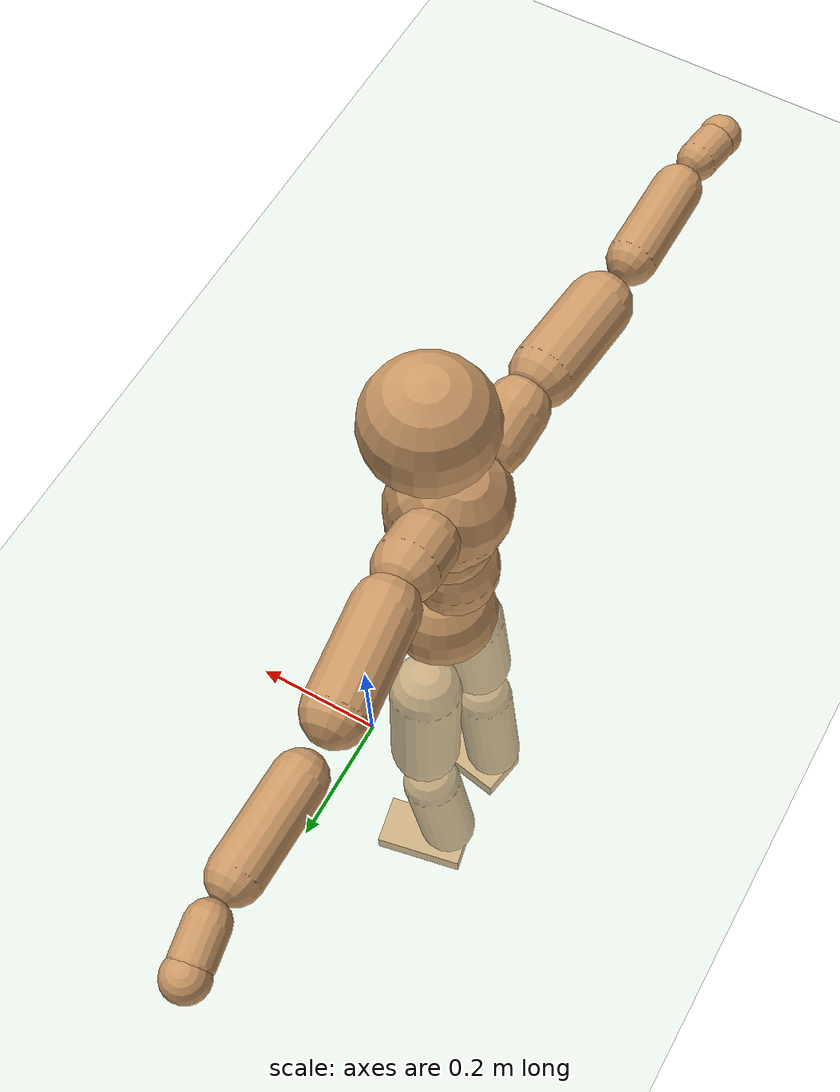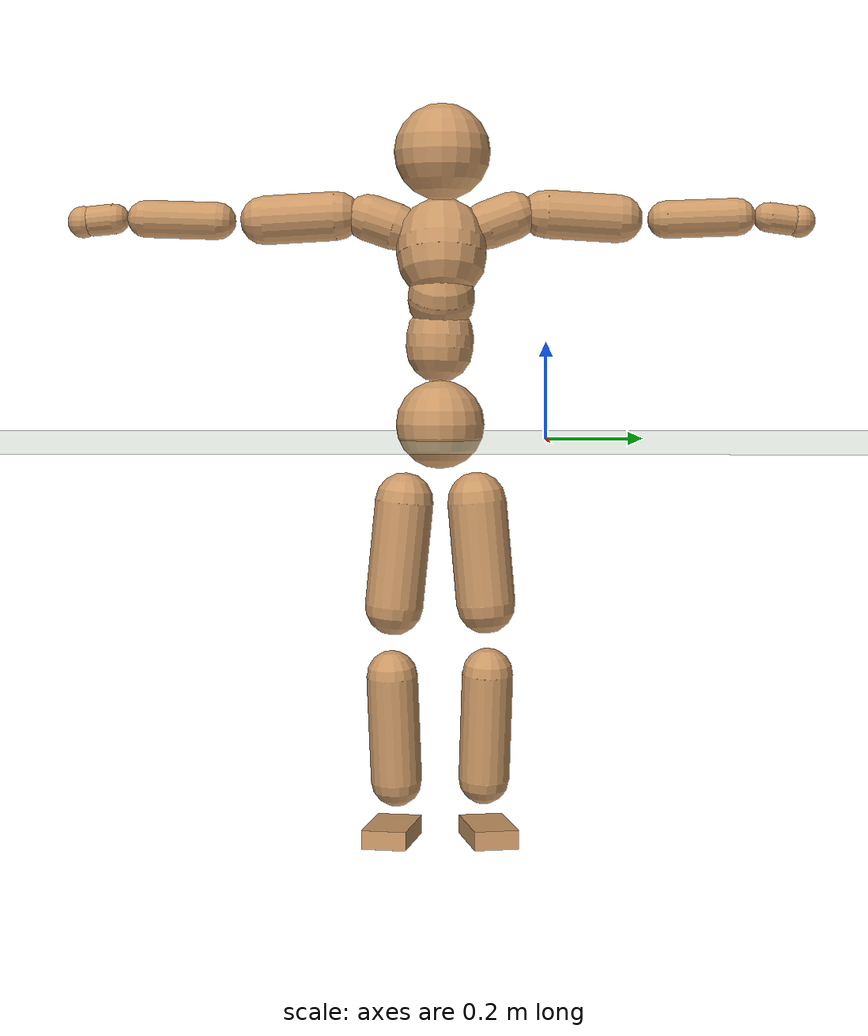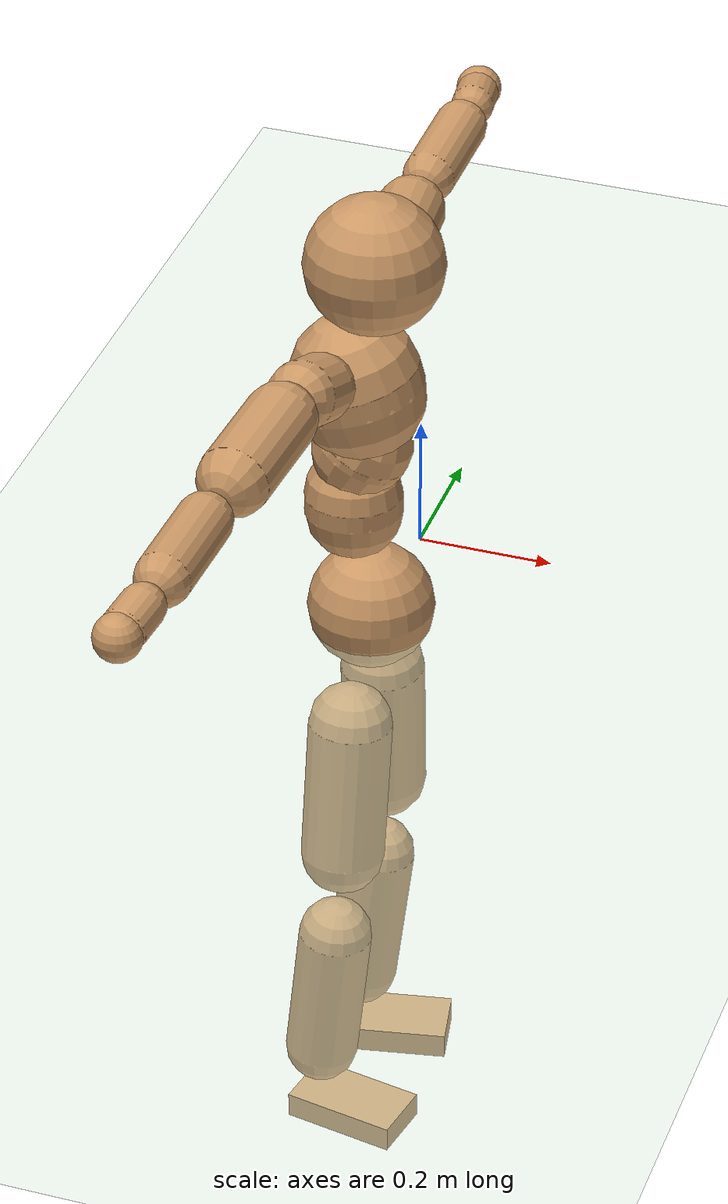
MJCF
<mujoco model="humanoid">
  <compiler coordinate="local"/>
  <default>
    <joint damping="0.0" armature="0.01" stiffness="0.0" limited="true"/>
    <geom conaffinity="1" condim="3" contype="7" margin="0.001" rgba="0.8 0.6 .4 1"/>
  </default>
  <asset>
    <texture type="skybox" builtin="gradient" rgb1=".4 .5 .6" rgb2="0 0 0" width="100" height="100"/>
    <texture builtin="flat" height="1278" mark="cross" markrgb="1 1 1" name="texgeom" random="0.01" rgb1="0.8 0.6 0.4" rgb2="0.8 0.6 0.4" type="cube" width="127"/>
    <texture builtin="checker" height="100" name="texplane" rgb1="0 0 0" rgb2="0.8 0.8 0.8" type="2d" width="100"/>
    <material name="MatPlane" reflectance="0.5" shininess="1" specular="1" texrepeat="60 60" texture="texplane"/>
    <material name="geom" texture="texgeom" texuniform="true"/>
  </asset>
  <worldbody>
    <light cutoff="100" diffuse="1 1 1" dir="-0 0 -1.3" directional="true" exponent="1" pos="0 0 1.3" specular=".1 .1 .1"/>
    <geom conaffinity="1" condim="3" name="floor" pos="0 0 0" rgba="0.8 0.9 0.8 1" size="100 100 .2" type="plane" material="MatPlane"/>
    <body name="Pelvis" pos="-0.0015 -0.2199 0.0301">
      <freejoint name="Pelvis"/>
      <geom type="sphere" contype="1" conaffinity="1" density="500" size="0.0921" pos="0.0000 0.0000 0.0000" name="Pelvis"/>
      <body name="L_Hip" pos="-0.007 0.0704 -0.089">
        <joint name="L_Hip_x" type="hinge" pos="0 0 0" axis="1 0 0" stiffness="800" damping="80" armature="0.02" range="-180.0000 180.0000"/>
        <joint name="L_Hip_y" type="hinge" pos="0 0 0" axis="0 1 0" stiffness="800" damping="80" armature="0.02" range="-180.0000 180.0000"/>
        <joint name="L_Hip_z" type="hinge" pos="0 0 0" axis="0 0 1" stiffness="800" damping="80" armature="0.02" range="-180.0000 180.0000"/>
        <geom type="capsule" contype="1" conaffinity="1" density="500" fromto="-0.0009 0.0062 -0.0718 -0.0034 0.0250 -0.2873" size="0.0616" name="L_Hip"/>
        <body name="L_Knee" pos="-0.0043 0.0312 -0.3592">
          <joint name="L_Knee_x" type="hinge" pos="0 0 0" axis="1 0 0" stiffness="800" damping="80" armature="0.02" range="-180.0000 180.0000"/>
          <joint name="L_Knee_y" type="hinge" pos="0 0 0" axis="0 1 0" stiffness="800" damping="80" armature="0.02" range="-180.0000 180.0000"/>
          <joint name="L_Knee_z" type="hinge" pos="0 0 0" axis="0 0 1" stiffness="800" damping="80" armature="0.02" range="-180.0000 180.0000"/>
          <geom type="capsule" contype="1" conaffinity="1" density="500" fromto="-0.0085 -0.0024 -0.0757 -0.0341 -0.0094 -0.3030" size="0.0536" name="L_Knee"/>
          <body name="L_Ankle" pos="-0.0426 -0.0118 -0.3787">
            <joint name="L_Ankle_x" type="hinge" pos="0 0 0" axis="1 0 0" stiffness="800" damping="80" armature="0.02" range="-180.0000 180.0000"/>
            <joint name="L_Ankle_y" type="hinge" pos="0 0 0" axis="0 1 0" stiffness="800" damping="80" armature="0.02" range="-180.0000 180.0000"/>
            <joint name="L_Ankle_z" type="hinge" pos="0 0 0" axis="0 0 1" stiffness="800" damping="80" armature="0.02" range="-180.0000 180.0000"/>
            <geom type="box" contype="1" conaffinity="1" density="500" pos="0.0583 0.0116 -0.0274" size="0.0843 0.0464 0.0197" quat="0.9952 0.0000 0.0000 0.0980" name="L_Ankle"/>
            <body name="L_Toe" pos="0.1166 0.0232 -0.0547">
              <joint name="L_Toe_x" type="hinge" pos="0 0 0" axis="1 0 0" stiffness="500" damping="50" armature="0.02" range="-180.0000 180.0000"/>
              <joint name="L_Toe_y" type="hinge" pos="0 0 0" axis="0 1 0" stiffness="500" damping="50" armature="0.02" range="-180.0000 180.0000"/>
              <joint name="L_Toe_z" type="hinge" pos="0 0 0" axis="0 0 1" stiffness="500" damping="50" armature="0.02" range="-180.0000 180.0000"/>
              <geom type="box" contype="1" conaffinity="1" density="500" pos="0.0000 0.0000 0.0272" size="0.001 0.0023 0.001" quat="0.9945 0.0000 0.0000 0.1044" name="L_Toe"/>
            </body>
          </body>
        </body>
      </body>
      <body name="R_Hip" pos="-0.0044 -0.0678 -0.088">
        <joint name="R_Hip_x" type="hinge" pos="0 0 0" axis="1 0 0" stiffness="800" damping="80" armature="0.02" range="-180.0000 180.0000"/>
        <joint name="R_Hip_y" type="hinge" pos="0 0 0" axis="0 1 0" stiffness="800" damping="80" armature="0.02" range="-180.0000 180.0000"/>
        <joint name="R_Hip_z" type="hinge" pos="0 0 0" axis="0 0 1" stiffness="800" damping="80" armature="0.02" range="-180.0000 180.0000"/>
        <geom type="capsule" contype="1" conaffinity="1" density="500" fromto="-0.0014 -0.0072 -0.0732 -0.0058 -0.0290 -0.2927" size="0.0609" name="R_Hip"/>
        <body name="R_Knee" pos="-0.0072 -0.0362 -0.3659">
          <joint name="R_Knee_x" type="hinge" pos="0 0 0" axis="1 0 0" stiffness="800" damping="80" armature="0.02" range="-180.0000 180.0000"/>
          <joint name="R_Knee_y" type="hinge" pos="0 0 0" axis="0 1 0" stiffness="800" damping="80" armature="0.02" range="-180.0000 180.0000"/>
          <joint name="R_Knee_z" type="hinge" pos="0 0 0" axis="0 0 1" stiffness="800" damping="80" armature="0.02" range="-180.0000 180.0000"/>
          <geom type="capsule" contype="1" conaffinity="1" density="500" fromto="-0.0083 0.0027 -0.0756 -0.0332 0.0109 -0.3024" size="0.0538" name="R_Knee"/>
          <body name="R_Ankle" pos="-0.0415 0.0136 -0.378">
            <joint name="R_Ankle_x" type="hinge" pos="0 0 0" axis="1 0 0" stiffness="800" damping="80" armature="0.02" range="-180.0000 180.0000"/>
            <joint name="R_Ankle_y" type="hinge" pos="0 0 0" axis="0 1 0" stiffness="800" damping="80" armature="0.02" range="-180.0000 180.0000"/>
            <joint name="R_Ankle_z" type="hinge" pos="0 0 0" axis="0 0 1" stiffness="800" damping="80" armature="0.02" range="-180.0000 180.0000"/>
            <geom type="box" contype="1" conaffinity="1" density="500" pos="0.0600 -0.0107 -0.0227" size="0.0846 0.0468 0.0195" quat="0.9961 0.0000 0.0000 -0.0883" name="R_Ankle"/>
            <body name="R_Toe" pos="0.12 -0.0215 -0.0454">
              <joint name="R_Toe_x" type="hinge" pos="0 0 0" axis="1 0 0" stiffness="500" damping="50" armature="0.02" range="-180.0000 180.0000"/>
              <joint name="R_Toe_y" type="hinge" pos="0 0 0" axis="0 1 0" stiffness="500" damping="50" armature="0.02" range="-180.0000 180.0000"/>
              <joint name="R_Toe_z" type="hinge" pos="0 0 0" axis="0 0 1" stiffness="500" damping="50" armature="0.02" range="-180.0000 180.0000"/>
              <geom type="box" contype="1" conaffinity="1" density="500" pos="0.0000 0.0000 0.0254" size="0.0009 0.0023 0.0011" quat="0.9969 0.0000 0.0000 -0.0790" name="R_Toe"/>
            </body>
          </body>
        </body>
      </body>
      <body name="Torso" pos="-0.0241 -0.0034 0.1038">
        <joint name="Torso_x" type="hinge" pos="0 0 0" axis="1 0 0" stiffness="1000" damping="100" armature="0.02" range="-180.0000 180.0000"/>
        <joint name="Torso_y" type="hinge" pos="0 0 0" axis="0 1 0" stiffness="1000" damping="100" armature="0.02" range="-180.0000 180.0000"/>
        <joint name="Torso_z" type="hinge" pos="0 0 0" axis="0 0 1" stiffness="1000" damping="100" armature="0.02" range="-180.0000 180.0000"/>
        <geom type="capsule" contype="1" conaffinity="1" density="500" fromto="-0.0024 0.0027 0.0808 -0.0016 0.0018 0.0539" size="0.0707" name="Torso"/>
        <body name="Spine" pos="-0.0041 0.0045 0.1347">
          <joint name="Spine_x" type="hinge" pos="0 0 0" axis="1 0 0" stiffness="1000" damping="100" armature="0.02" range="-180.0000 180.0000"/>
          <joint name="Spine_y" type="hinge" pos="0 0 0" axis="0 1 0" stiffness="1000" damping="100" armature="0.02" range="-180.0000 180.0000"/>
          <joint name="Spine_z" type="hinge" pos="0 0 0" axis="0 0 1" stiffness="1000" damping="100" armature="0.02" range="-180.0000 180.0000"/>
          <geom type="capsule" contype="1" conaffinity="1" density="500" fromto="0.0164 0.0013 0.0301 0.0110 0.0009 0.0201" size="0.0702" name="Spine"/>
          <body name="Chest" pos="0.0274 0.0022 0.0502">
            <joint name="Chest_x" type="hinge" pos="0 0 0" axis="1 0 0" stiffness="1000" damping="100" armature="0.02" range="-180.0000 180.0000"/>
            <joint name="Chest_y" type="hinge" pos="0 0 0" axis="0 1 0" stiffness="1000" damping="100" armature="0.02" range="-180.0000 180.0000"/>
            <joint name="Chest_z" type="hinge" pos="0 0 0" axis="0 0 1" stiffness="1000" damping="100" armature="0.02" range="-180.0000 180.0000"/>
            <geom type="capsule" contype="1" conaffinity="1" density="500" fromto="-0.0252 -0.0007 0.0892 -0.0168 -0.0004 0.0595" size="0.0939" name="Chest"/>
            <body name="Neck" pos="-0.048 -0.002 0.2107">
              <joint name="Neck_x" type="hinge" pos="0 0 0" axis="1 0 0" stiffness="500" damping="50" armature="0.02" range="-180.0000 180.0000"/>
              <joint name="Neck_y" type="hinge" pos="0 0 0" axis="0 1 0" stiffness="500" damping="50" armature="0.02" range="-180.0000 180.0000"/>
              <joint name="Neck_z" type="hinge" pos="0 0 0" axis="0 0 1" stiffness="500" damping="50" armature="0.02" range="-180.0000 180.0000"/>
              <geom type="capsule" contype="1" conaffinity="1" density="500" fromto="0.0100 0.0006 0.0126 0.0402 0.0025 0.0505" size="0.0416" name="Neck"/>
              <body name="Head" pos="0.0502 0.0031 0.0631">
                <joint name="Head_x" type="hinge" pos="0 0 0" axis="1 0 0" stiffness="500" damping="50" armature="0.02" range="-180.0000 180.0000"/>
                <joint name="Head_y" type="hinge" pos="0 0 0" axis="0 1 0" stiffness="500" damping="50" armature="0.02" range="-180.0000 180.0000"/>
                <joint name="Head_z" type="hinge" pos="0 0 0" axis="0 0 1" stiffness="500" damping="50" armature="0.02" range="-180.0000 180.0000"/>
                <geom type="sphere" contype="1" conaffinity="1" density="500" size="0.0999" pos="0.0000 0.0000 0.0000" name="Head"/>
              </body>
            </body>
            <body name="L_Thorax" pos="-0.0365 0.0761 0.119">
              <joint name="L_Thorax_x" type="hinge" pos="0 0 0" axis="1 0 0" stiffness="500" damping="50" armature="0.02" range="-180.0000 180.0000"/>
              <joint name="L_Thorax_y" type="hinge" pos="0 0 0" axis="0 1 0" stiffness="500" damping="50" armature="0.02" range="-180.0000 180.0000"/>
              <joint name="L_Thorax_z" type="hinge" pos="0 0 0" axis="0 0 1" stiffness="500" damping="50" armature="0.02" range="-180.0000 180.0000"/>
              <geom type="capsule" contype="1" conaffinity="1" density="500" fromto="-0.0013 0.0178 0.0067 -0.0053 0.0713 0.0268" size="0.0507" name="L_Thorax"/>
              <body name="L_Shoulder" pos="-0.0066 0.0891 0.0335">
                <joint name="L_Shoulder_x" type="hinge" pos="0 0 0" axis="1 0 0" stiffness="500" damping="50" armature="0.02" range="-720.0000 720.0000"/>
                <joint name="L_Shoulder_y" type="hinge" pos="0 0 0" axis="0 1 0" stiffness="500" damping="50" armature="0.02" range="-720.0000 720.0000"/>
                <joint name="L_Shoulder_z" type="hinge" pos="0 0 0" axis="0 0 1" stiffness="500" damping="50" armature="0.02" range="-720.0000 720.0000"/>
                <geom type="capsule" contype="1" conaffinity="1" density="500" fromto="-0.0059 0.0513 -0.0029 -0.0235 0.2051 -0.0117" size="0.0508" name="L_Shoulder"/>
                <body name="L_Elbow" pos="-0.0294 0.2563 -0.0146">
                  <joint name="L_Elbow_x" type="hinge" pos="0 0 0" axis="1 0 0" stiffness="500" damping="50" armature="0.02" range="-720.0000 720.0000"/>
                  <joint name="L_Elbow_y" type="hinge" pos="0 0 0" axis="0 1 0" stiffness="500" damping="50" armature="0.02" range="-720.0000 720.0000"/>
                  <joint name="L_Elbow_z" type="hinge" pos="0 0 0" axis="0 0 1" stiffness="500" damping="50" armature="0.02" range="-720.0000 720.0000"/>
                  <geom type="capsule" contype="1" conaffinity="1" density="500" fromto="0.0002 0.0494 0.0018 0.0008 0.1975 0.0071" size="0.0395" name="L_Elbow"/>
                  <body name="L_Wrist" pos="0.0011 0.2468 0.0088">
                    <joint name="L_Wrist_x" type="hinge" pos="0 0 0" axis="1 0 0" stiffness="300" damping="30" armature="0.02" range="-180.0000 180.0000"/>
                    <joint name="L_Wrist_y" type="hinge" pos="0 0 0" axis="0 1 0" stiffness="300" damping="30" armature="0.02" range="-180.0000 180.0000"/>
                    <joint name="L_Wrist_z" type="hinge" pos="0 0 0" axis="0 0 1" stiffness="300" damping="30" armature="0.02" range="-180.0000 180.0000"/>
                    <geom type="capsule" contype="1" conaffinity="1" density="500" fromto="-0.0028 0.0168 -0.0021 -0.0111 0.0671 -0.0082" size="0.0315" name="L_Wrist"/>
                    <body name="L_Hand" pos="-0.0139 0.0839 -0.0103">
                      <joint name="L_Hand_x" type="hinge" pos="0 0 0" axis="1 0 0" stiffness="300" damping="30" armature="0.02" range="-180.0000 180.0000"/>
                      <joint name="L_Hand_y" type="hinge" pos="0 0 0" axis="0 1 0" stiffness="300" damping="30" armature="0.02" range="-180.0000 180.0000"/>
                      <joint name="L_Hand_z" type="hinge" pos="0 0 0" axis="0 0 1" stiffness="300" damping="30" armature="0.02" range="-180.0000 180.0000"/>
                      <geom type="sphere" contype="1" conaffinity="1" density="500" size="0.0338" pos="0.0000 0.0000 0.0000" name="L_Hand"/>
                    </body>
                  </body>
                </body>
              </body>
            </body>
            <body name="R_Thorax" pos="-0.0417 -0.0775 0.1162">
              <joint name="R_Thorax_x" type="hinge" pos="0 0 0" axis="1 0 0" stiffness="500" damping="50" armature="0.02" range="-180.0000 180.0000"/>
              <joint name="R_Thorax_y" type="hinge" pos="0 0 0" axis="0 1 0" stiffness="500" damping="50" armature="0.02" range="-180.0000 180.0000"/>
              <joint name="R_Thorax_z" type="hinge" pos="0 0 0" axis="0 0 1" stiffness="500" damping="50" armature="0.02" range="-180.0000 180.0000"/>
              <geom type="capsule" contype="1" conaffinity="1" density="500" fromto="-0.0020 -0.0187 0.0066 -0.0080 -0.0748 0.0263" size="0.0495" name="R_Thorax"/>
              <body name="R_Shoulder" pos="-0.0099 -0.0935 0.0329">
                <joint name="R_Shoulder_x" type="hinge" pos="0 0 0" axis="1 0 0" stiffness="500" damping="50" armature="0.02" range="-720.0000 720.0000"/>
                <joint name="R_Shoulder_y" type="hinge" pos="0 0 0" axis="0 1 0" stiffness="500" damping="50" armature="0.02" range="-720.0000 720.0000"/>
                <joint name="R_Shoulder_z" type="hinge" pos="0 0 0" axis="0 0 1" stiffness="500" damping="50" armature="0.02" range="-720.0000 720.0000"/>
                <geom type="capsule" contype="1" conaffinity="1" density="500" fromto="-0.0041 -0.0503 -0.0027 -0.0166 -0.2013 -0.0107" size="0.0518" name="R_Shoulder"/>
                <body name="R_Elbow" pos="-0.0207 -0.2516 -0.0134">
                  <joint name="R_Elbow_x" type="hinge" pos="0 0 0" axis="1 0 0" stiffness="500" damping="50" armature="0.02" range="-720.0000 720.0000"/>
                  <joint name="R_Elbow_y" type="hinge" pos="0 0 0" axis="0 1 0" stiffness="500" damping="50" armature="0.02" range="-720.0000 720.0000"/>
                  <joint name="R_Elbow_z" type="hinge" pos="0 0 0" axis="0 0 1" stiffness="500" damping="50" armature="0.02" range="-720.0000 720.0000"/>
                  <geom type="capsule" contype="1" conaffinity="1" density="500" fromto="-0.0005 -0.0502 0.0016 -0.0021 -0.2010 0.0064" size="0.0394" name="R_Elbow"/>
                  <body name="R_Wrist" pos="-0.0026 -0.2512 0.008">
                    <joint name="R_Wrist_x" type="hinge" pos="0 0 0" axis="1 0 0" stiffness="300" damping="30" armature="0.02" range="-180.0000 180.0000"/>
                    <joint name="R_Wrist_y" type="hinge" pos="0 0 0" axis="0 1 0" stiffness="300" damping="30" armature="0.02" range="-180.0000 180.0000"/>
                    <joint name="R_Wrist_z" type="hinge" pos="0 0 0" axis="0 0 1" stiffness="300" damping="30" armature="0.02" range="-180.0000 180.0000"/>
                    <geom type="capsule" contype="1" conaffinity="1" density="500" fromto="-0.0022 -0.0168 -0.0015 -0.0087 -0.0671 -0.0060" size="0.032" name="R_Wrist"/>
                    <body name="R_Hand" pos="-0.0108 -0.0839 -0.0075">
                      <joint name="R_Hand_x" type="hinge" pos="0 0 0" axis="1 0 0" stiffness="300" damping="30" armature="0.02" range="-180.0000 180.0000"/>
                      <joint name="R_Hand_y" type="hinge" pos="0 0 0" axis="0 1 0" stiffness="300" damping="30" armature="0.02" range="-180.0000 180.0000"/>
                      <joint name="R_Hand_z" type="hinge" pos="0 0 0" axis="0 0 1" stiffness="300" damping="30" armature="0.02" range="-180.0000 180.0000"/>
                      <geom type="sphere" contype="1" conaffinity="1" density="500" size="0.0337" pos="0.0000 0.0000 0.0000" name="R_Hand"/>
                    </body>
                  </body>
                </body>
              </body>
            </body>
          </body>
        </body>
      </body>
    </body>
  </worldbody>
  <actuator>
    <motor name="L_Hip_x" joint="L_Hip_x" gear="500"/>
    <motor name="L_Hip_y" joint="L_Hip_y" gear="500"/>
    <motor name="L_Hip_z" joint="L_Hip_z" gear="500"/>
    <motor name="L_Knee_x" joint="L_Knee_x" gear="500"/>
    <motor name="L_Knee_y" joint="L_Knee_y" gear="500"/>
    <motor name="L_Knee_z" joint="L_Knee_z" gear="500"/>
    <motor name="L_Ankle_x" joint="L_Ankle_x" gear="500"/>
    <motor name="L_Ankle_y" joint="L_Ankle_y" gear="500"/>
    <motor name="L_Ankle_z" joint="L_Ankle_z" gear="500"/>
    <motor name="L_Toe_x" joint="L_Toe_x" gear="500"/>
    <motor name="L_Toe_y" joint="L_Toe_y" gear="500"/>
    <motor name="L_Toe_z" joint="L_Toe_z" gear="500"/>
    <motor name="R_Hip_x" joint="R_Hip_x" gear="500"/>
    <motor name="R_Hip_y" joint="R_Hip_y" gear="500"/>
    <motor name="R_Hip_z" joint="R_Hip_z" gear="500"/>
    <motor name="R_Knee_x" joint="R_Knee_x" gear="500"/>
    <motor name="R_Knee_y" joint="R_Knee_y" gear="500"/>
    <motor name="R_Knee_z" joint="R_Knee_z" gear="500"/>
    <motor name="R_Ankle_x" joint="R_Ankle_x" gear="500"/>
    <motor name="R_Ankle_y" joint="R_Ankle_y" gear="500"/>
    <motor name="R_Ankle_z" joint="R_Ankle_z" gear="500"/>
    <motor name="R_Toe_x" joint="R_Toe_x" gear="500"/>
    <motor name="R_Toe_y" joint="R_Toe_y" gear="500"/>
    <motor name="R_Toe_z" joint="R_Toe_z" gear="500"/>
    <motor name="Torso_x" joint="Torso_x" gear="500"/>
    <motor name="Torso_y" joint="Torso_y" gear="500"/>
    <motor name="Torso_z" joint="Torso_z" gear="500"/>
    <motor name="Spine_x" joint="Spine_x" gear="500"/>
    <motor name="Spine_y" joint="Spine_y" gear="500"/>
    <motor name="Spine_z" joint="Spine_z" gear="500"/>
    <motor name="Chest_x" joint="Chest_x" gear="500"/>
    <motor name="Chest_y" joint="Chest_y" gear="500"/>
    <motor name="Chest_z" joint="Chest_z" gear="500"/>
    <motor name="Neck_x" joint="Neck_x" gear="500"/>
    <motor name="Neck_y" joint="Neck_y" gear="500"/>
    <motor name="Neck_z" joint="Neck_z" gear="500"/>
    <motor name="Head_x" joint="Head_x" gear="500"/>
    <motor name="Head_y" joint="Head_y" gear="500"/>
    <motor name="Head_z" joint="Head_z" gear="500"/>
    <motor name="L_Thorax_x" joint="L_Thorax_x" gear="500"/>
    <motor name="L_Thorax_y" joint="L_Thorax_y" gear="500"/>
    <motor name="L_Thorax_z" joint="L_Thorax_z" gear="500"/>
    <motor name="L_Shoulder_x" joint="L_Shoulder_x" gear="500"/>
    <motor name="L_Shoulder_y" joint="L_Shoulder_y" gear="500"/>
    <motor name="L_Shoulder_z" joint="L_Shoulder_z" gear="500"/>
    <motor name="L_Elbow_x" joint="L_Elbow_x" gear="500"/>
    <motor name="L_Elbow_y" joint="L_Elbow_y" gear="500"/>
    <motor name="L_Elbow_z" joint="L_Elbow_z" gear="500"/>
    <motor name="L_Wrist_x" joint="L_Wrist_x" gear="500"/>
    <motor name="L_Wrist_y" joint="L_Wrist_y" gear="500"/>
    <motor name="L_Wrist_z" joint="L_Wrist_z" gear="500"/>
    <motor name="L_Hand_x" joint="L_Hand_x" gear="500"/>
    <motor name="L_Hand_y" joint="L_Hand_y" gear="500"/>
    <motor name="L_Hand_z" joint="L_Hand_z" gear="500"/>
    <motor name="R_Thorax_x" joint="R_Thorax_x" gear="500"/>
    <motor name="R_Thorax_y" joint="R_Thorax_y" gear="500"/>
    <motor name="R_Thorax_z" joint="R_Thorax_z" gear="500"/>
    <motor name="R_Shoulder_x" joint="R_Shoulder_x" gear="500"/>
    <motor name="R_Shoulder_y" joint="R_Shoulder_y" gear="500"/>
    <motor name="R_Shoulder_z" joint="R_Shoulder_z" gear="500"/>
    <motor name="R_Elbow_x" joint="R_Elbow_x" gear="500"/>
    <motor name="R_Elbow_y" joint="R_Elbow_y" gear="500"/>
    <motor name="R_Elbow_z" joint="R_Elbow_z" gear="500"/>
    <motor name="R_Wrist_x" joint="R_Wrist_x" gear="500"/>
    <motor name="R_Wrist_y" joint="R_Wrist_y" gear="500"/>
    <motor name="R_Wrist_z" joint="R_Wrist_z" gear="500"/>
    <motor name="R_Hand_x" joint="R_Hand_x" gear="500"/>
    <motor name="R_Hand_y" joint="R_Hand_y" gear="500"/>
    <motor name="R_Hand_z" joint="R_Hand_z" gear="500"/>
  </actuator>
  <contact>
    <exclude body1="Torso" body2="Chest"/>
    <exclude body1="Head" body2="Chest"/>
    <exclude body1="R_Knee" body2="R_Toe"/>
    <exclude body1="R_Knee" body2="L_Ankle"/>
    <exclude body1="R_Knee" body2="L_Toe"/>
    <exclude body1="L_Knee" body2="L_Toe"/>
    <exclude body1="L_Knee" body2="R_Ankle"/>
    <exclude body1="L_Knee" body2="R_Toe"/>
    <exclude body1="L_Shoulder" body2="Chest"/>
    <exclude body1="R_Shoulder" body2="Chest"/>
  </contact>
  <sensor/>
  <size njmax="700" nconmax="700"/>
</mujoco>
